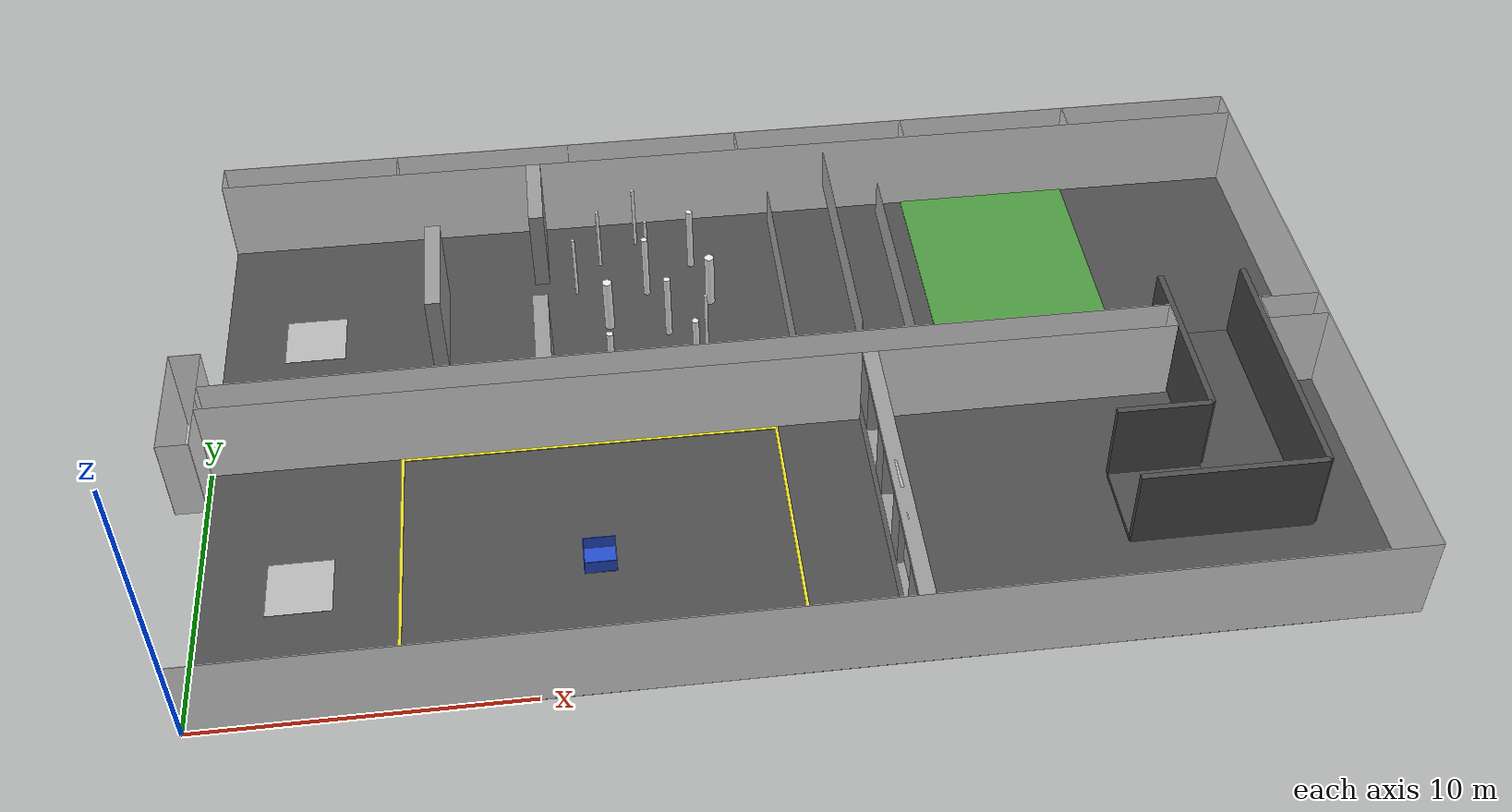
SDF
<sdf version="1.5">
 <world name="default">
  <scene><grid>false</grid><origin_visual>false</origin_visual></scene>
  <include><uri>model://sun</uri></include>
  <include><uri>model://AIGC2_ground</uri><pose>18.0 10.5 0.0 0 0 0</pose></include>
  <include><uri>model://AIGC2_start</uri><pose>3.0 16.0 0.0 0 0 0</pose></include>
  <include><uri>model://AIGC2_landing</uri><pose>3.0 5.0 0.0 0 0 0</pose></include>
  <include>
   <uri>model://AIGC2_wall_36m</uri>
   <name>AIGC2_wall_36m_1</name>
   <pose>18.0 0.0 0.0 0 0 0</pose>
  </include>
  <include>
   <uri>model://AIGC2_wall_36m</uri>
   <name>AIGC2_wall_36m_2</name>
   <pose>18.0 21.0 0.0 0 0 0</pose>
  </include>
  <include>
   <uri>model://AIGC2_wall_36m</uri>
   <name>AIGC2_wall_36m_3</name>
   <pose>18.0 22.0 0.0 0 0 0</pose>
  </include>
  <include>
   <uri>model://AIGC2_wall_1m</uri>
   <name>AIGC2_wall_1m_1</name>
   <pose>0.0 10.5 0.0 0 0 -1.57079</pose>
  </include>
  <include>
   <uri>model://AIGC2_wall_1m</uri>
   <name>AIGC2_wall_1m_2</name>
   <pose>0.0 21.5 0.0 0 0 -1.57079</pose>
  </include>
  <include>
   <uri>model://AIGC2_wall_1m</uri>
   <name>AIGC2_wall_1m_3</name>
   <pose>6.0 21.5 0.0 0 0 -1.57079</pose>
  </include>
  <include>
   <uri>model://AIGC2_wall_1m</uri>
   <name>AIGC2_wall_1m_4</name>
   <pose>12.0 21.5 0.0 0 0 -1.57079</pose>
  </include>
  <include>
   <uri>model://AIGC2_wall_1m</uri>
   <name>AIGC2_wall_1m_5</name>
   <pose>18.0 21.5 0.0 0 0 -1.57079</pose>
  </include>
  <include>
   <uri>model://AIGC2_wall_1m</uri>
   <name>AIGC2_wall_1m_6</name>
   <pose>24.0 21.5 0.0 0 0 -1.57079</pose>
  </include>
  <include>
   <uri>model://AIGC2_wall_1m</uri>
   <name>AIGC2_wall_1m_7</name>
   <pose>30.0 21.5 0.0 0 0 -1.57079</pose>
  </include>
  <include>
   <uri>model://AIGC2_wall_1m</uri>
   <name>AIGC2_wall_1m_8</name>
   <pose>36.0 21.5 0.0 0 0 -1.57079</pose>
  </include>
  <include>
   <uri>model://AIGC2_wall_1m</uri>
   <name>AIGC2_wall_1m_9</name>
   <pose>31.0 10.5 0.0 0 0 -1.57079</pose>
  </include>
  <include>
   <uri>model://AIGC2_wall_1m</uri>
   <name>AIGC2_wall_1m_10</name>
   <pose>34.0 10.5 0.0 0 0 -1.57079</pose>
  </include>
  <include>
   <uri>model://AIGC2_wall_31m</uri>
   <name>AIGC2_wall_31m_1</name>
   <pose>15.5 10.0 0.0 0 0 0</pose>
  </include>
  <include>
   <uri>model://AIGC2_wall_31m</uri>
   <name>AIGC2_wall_31m_2</name>
   <pose>15.5 11.0 0.0 0 0 0</pose>
  </include>
  <include>
   <uri>model://AIGC2_wall_21m</uri>
   <name>AIGC2_wall_21m_1</name>
   <pose>36.0 10.5 0.0 0 0 -1.57079</pose>
  </include>
  <include>
   <uri>model://AIGC2_wall_2m</uri>
   <name>AIGC2_wall_2m_1</name>
   <pose>35.0 10.0 0.0 0 0 0</pose>
  </include>
  <include>
   <uri>model://AIGC2_wall_2m</uri>
   <name>AIGC2_wall_2m_2</name>
   <pose>35.0 11.0 0.0 0 0 0</pose>
  </include>
  <include>
   <uri>model://AIGC2_wall_5m</uri>
   <name>AIGC2_wall_5m_1</name>
   <pose>0.0 10.5 0.0 0 0 1.57079</pose>
  </include>
  <include>
   <uri>model://AIGC2_wall_5m</uri>
   <name>AIGC2_wall_5m_2</name>
   <pose>-1.0 10.5 0.0 0 0 1.57079</pose>
  </include>
  <include>
   <uri>model://AIGC2_wall_1m</uri>
   <name>AIGC2_wall_1m_12</name>
   <pose>-0.5 12.5 0.0 0 0 0</pose>
  </include>
  <include>
   <uri>model://AIGC2_wall_1m</uri>
   <name>AIGC2_wall_1m_11</name>
   <pose>-0.5 8.5 0.0 0 0 0</pose>
  </include>
  <include>
   <uri>model://AIGC2_wall_4m</uri>
   <name>AIGC2_wall_4m_1</name>
   <pose>7.25 16.0 0.0 0 0 -1.57079</pose>
  </include>
  <include>
   <uri>model://AIGC2_wall_3m</uri>
   <name>AIGC2_wall_3m_1</name>
   <pose>10.75 19.5 0.0 0 0 -1.57079</pose>
  </include>
  <include>
   <uri>model://AIGC2_wall_3m</uri>
   <name>AIGC2_wall_3m_2</name>
   <pose>10.75 12.5 0.0 0 0 -1.57079</pose>
  </include>
  <include>
   <uri>model://AIGC2_pole_30cm</uri>
   <name>AIGC2_pole_30cm_1</name>
   <pose>16.5 16.37 0.0 0 0 0</pose>
  </include>
  <include>
   <uri>model://AIGC2_pole_30cm</uri>
   <name>AIGC2_pole_30cm_2</name>
   <pose>12.96 15.5 0.0 0 0 0</pose>
  </include>
  <include>
   <uri>model://AIGC2_pole_20cm</uri>
   <name>AIGC2_pole_20cm_1</name>
   <pose>16.0 18.3 0.0 0 0 0</pose>
  </include>
  <include>
   <uri>model://AIGC2_pole_20cm</uri>
   <name>AIGC2_pole_20cm_2</name>
   <pose>14.35 17.0 0.0 0 0 0</pose>
  </include>
  <include>
   <uri>model://AIGC2_pole_20cm</uri>
   <name>AIGC2_pole_20cm_3</name>
   <pose>14.94 14.84 0.0 0 0 0</pose>
  </include>
  <include>
   <uri>model://AIGC2_pole_20cm</uri>
   <name>AIGC2_pole_20cm_4</name>
   <pose>15.7 12.69 0.0 0 0 0</pose>
  </include>
  <include>
   <uri>model://AIGC2_pole_20cm</uri>
   <name>AIGC2_pole_20cm_5</name>
   <pose>12.89 12.39 0.0 0 0 0</pose>
  </include>
  <include>
   <uri>model://AIGC2_pole_10cm</uri>
   <name>AIGC2_pole_10cm_1</name>
   <pose>11.93 17.37 0.0 0 0 0</pose>
  </include>
  <include>
   <uri>model://AIGC2_pole_10cm</uri>
   <name>AIGC2_pole_10cm_2</name>
   <pose>12.83 18.8 0.0 0 0 0</pose>
  </include>
  <include>
   <uri>model://AIGC2_pole_10cm</uri>
   <name>AIGC2_pole_10cm_3</name>
   <pose>16.15 13.96 0.0 0 0 0</pose>
  </include>
  <include>
   <uri>model://AIGC2_pole_10cm</uri>
   <name>AIGC2_pole_10cm_4</name>
   <pose>14.44 18.05 0.0 0 0 0</pose>
  </include>
  <include>
   <uri>model://AIGC2_pole_10cm</uri>
   <name>AIGC2_pole_10cm_5</name>
   <pose>14.14 19.84 0.0 0 0 0</pose>
  </include>
  <include><uri>model://AIGC2_net</uri><name>AIGCS_net_1</name><pose>23.0 16.0 0.0 0 0 0.0</pose></include>
  <include><uri>model://AIGC2_net</uri><name>AIGCS_net_2</name><pose>21.0 16.0 1.5 0 0 0.0</pose></include>
  <include><uri>model://AIGC2_net</uri><name>AIGCS_net_3</name><pose>19.0 16.0 0.0 0 0 0.0</pose></include>
  <include><uri>model://AIGC2_grass</uri><name>AIGCS_grass</name><pose>27.0 16.0 0.0 0 0 0.0</pose></include>
  <include>
   <uri>model://AIGC2_corridor</uri>
   <name>AIGC2_corridor</name>
   <pose>33.9 3.7 0.15 0 0 0.0</pose>
  </include>
  <include><uri>model://AIGC2_window</uri><name>AIGC2_window</name><pose>21.0 5.0 0.0 0 0 0.0</pose></include>
  <include>
   <uri>model://AIGC2_window_glass</uri>
   <name>AIGC2_glass_1</name>
   <pose>21.0 2.2 1.0 0 0 0.0</pose>
  </include>
  <include>
   <uri>model://AIGC2_window_glass_half</uri>
   <name>AIGC2_glass_2</name>
   <pose>21.0 5.0 1.0 0 0 0.0</pose>
  </include>
  <include>
   <uri>model://AIGC2_wind_10m</uri>
   <name>AIGC2_wind_10m_1</name>
   <pose>12.0 9.925 0.0 0 0 0.0</pose>
  </include>
  <include>
   <uri>model://AIGC2_wind_10m</uri>
   <name>AIGC2_wind_10m_2</name>
   <pose>12.0 0.075 0.0 0 0 0.0</pose>
  </include>
  <include>
   <uri>model://AIGC2_wind_9m</uri>
   <name>AIGC2_wind_9m_1</name>
   <pose>18.0 5.0 0.0 0 0 0.0</pose>
  </include>
  <include>
   <uri>model://AIGC2_wind_9m</uri>
   <name>AIGC2_wind_9m_2</name>
   <pose>6.0 5.0 0.0 0 0 0.0</pose>
  </include>
  <include><uri>model://AIGC2_box</uri><name>AIGC2_box</name><pose>12.0 5.0 0.0 0 0 0.0</pose></include>
  <physics name="default_physics" default="0" type="ode">
   <gravity>0 0 -9.8066</gravity>
   <ode>
    <solver>
     <type>quick</type>
     <iters>10</iters>
     <sor>1.3</sor>
     <use_dynamic_moi_rescaling>0</use_dynamic_moi_rescaling>
    </solver>
    <constraints>
     <cfm>0</cfm>
     <erp>0.2</erp>
     <contact_max_correcting_vel>100</contact_max_correcting_vel>
     <contact_surface_layer>0.001</contact_surface_layer>
    </constraints>
   </ode>
   <max_step_size>0.004</max_step_size>
   <real_time_factor>1</real_time_factor>
   <real_time_update_rate>250</real_time_update_rate>
   <magnetic_field>6.0e-6 2.3e-5 -4.2e-5</magnetic_field>
  </physics>
 </world>
</sdf>
